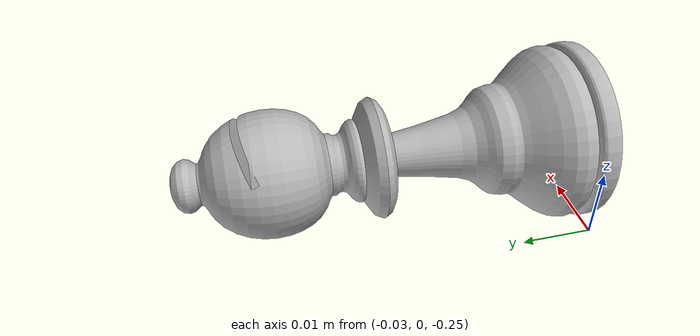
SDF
<?xml version="1.0"?>
<sdf version="1.7">
  <model name="dark_bishop">
    <pose>0 0 0 0 0 0</pose>
    <link name="link">
      <inertial>
        <pose>-0.021218461538461537 0.013745384615384614 -0.23808153846153846 0 0 0</pose>
        <mass>0.022483377131601274</mass>
        <inertia>
          <ixx>6.759484296878372e-06</ixx>
          <ixy>0.0</ixy>
          <ixz>0.0</ixz>
          <iyy>2.1888112249752993e-06</iyy>
          <iyz>0.0</iyz>
          <izz>6.759623627297721e-06</izz>
        </inertia>
      </inertial>
      <collision name="collision">
        <pose>-0.021218461538461537 0.02749230769230769 -0.23808153846153846 0 0 0</pose>
        <geometry>
          <box>
            <size>0.02416923076923077 0.05498769230769231 0.024167692307692307</size>
          </box>
        </geometry>
      </collision>
      <visual name="box_visual">
        <geometry>
          <mesh>
            <uri>model.obj</uri>
            <scale>0.00015384615384615385 0.00015384615384615385 0.00015384615384615385</scale>
          </mesh>
        </geometry>
      </visual>
    </link>
  </model>
</sdf>
